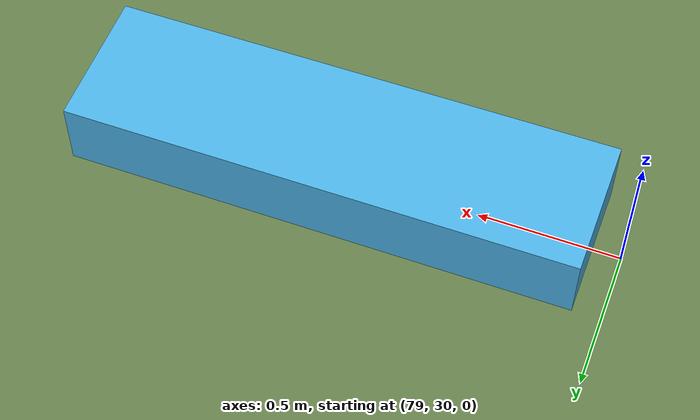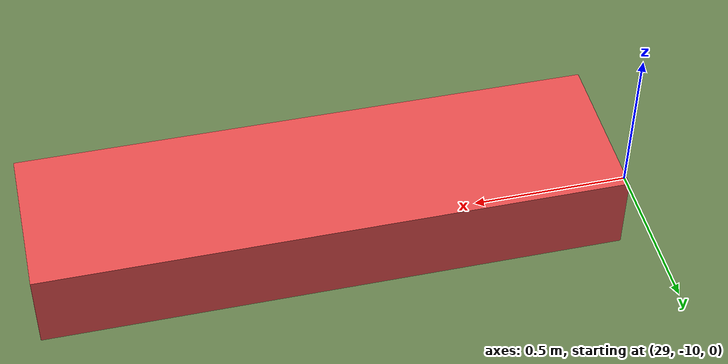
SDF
<?xml version="1.0"?>
<sdf version="1.7">
  <world name="search_area">

    <physics type="ode">
      <max_step_size>0.004</max_step_size>
      <real_time_factor>1.0</real_time_factor>
      <real_time_update_rate>250</real_time_update_rate>
    </physics>

    <plugin name="gz::sim::systems::Physics"      filename="gz-sim-physics-system"/>
    <plugin name="gz::sim::systems::UserCommands" filename="gz-sim-user-commands-system"/>
    <plugin name="gz::sim::systems::SceneBroadcaster" filename="gz-sim-scene-broadcaster-system"/>
    <plugin name="gz::sim::systems::Sensors" filename="gz-sim-sensors-system">
      <render_engine>ogre2</render_engine>
    </plugin>
    <plugin name="gz::sim::systems::Imu" filename="gz-sim-imu-system"/>

    <light type="directional" name="sun">
      <cast_shadows>true</cast_shadows>
      <pose>0 0 10 0 0 0</pose>
      <diffuse>1 1 1 1</diffuse>
      <specular>0.5 0.5 0.5 1</specular>
      <direction>-0.5 0.1 -0.9</direction>
    </light>

    <model name="ground_plane">
      <static>true</static>
      <link name="link">
        <collision name="collision">
          <geometry><plane><normal>0 0 1</normal><size>500 500</size></plane></geometry>
        </collision>
        <visual name="visual">
          <geometry><plane><normal>0 0 1</normal><size>500 500</size></plane></geometry>
          <material>
            <ambient>0.3 0.4 0.2 1</ambient>
            <diffuse>0.4 0.5 0.3 1</diffuse>
          </material>
        </visual>
      </link>
    </model>

    <!-- Three placeholder targets at the locations referenced by missions/*.yaml.
         Replace with skeletal/animated person models once available. -->
    <model name="target_1">
      <static>true</static>
      <pose>30 -10 0.1 0 0 0</pose>
      <link name="link">
        <visual name="visual">
          <geometry><box><size>1.8 0.5 0.3</size></box></geometry>
          <material>
            <ambient>0.8 0.2 0.2 1</ambient>
            <diffuse>0.9 0.3 0.3 1</diffuse>
          </material>
        </visual>
      </link>
    </model>

    <model name="target_2">
      <static>true</static>
      <pose>80 30 0.1 0 0 0</pose>
      <link name="link">
        <visual name="visual">
          <geometry><box><size>1.8 0.5 0.3</size></box></geometry>
          <material>
            <ambient>0.2 0.6 0.8 1</ambient>
            <diffuse>0.3 0.7 0.9 1</diffuse>
          </material>
        </visual>
      </link>
    </model>

    <model name="target_3">
      <static>true</static>
      <pose>50 50 0.1 0 0 0</pose>
      <link name="link">
        <visual name="visual">
          <geometry><box><size>1.8 0.5 0.3</size></box></geometry>
          <material>
            <ambient>0.8 0.6 0.2 1</ambient>
            <diffuse>0.9 0.7 0.3 1</diffuse>
          </material>
        </visual>
      </link>
    </model>

  </world>
</sdf>
